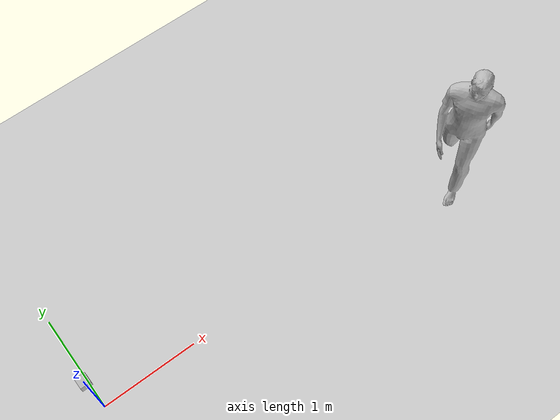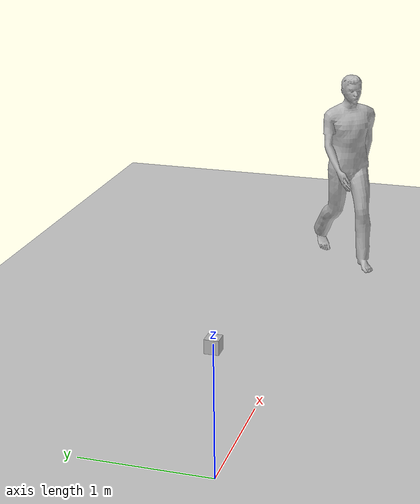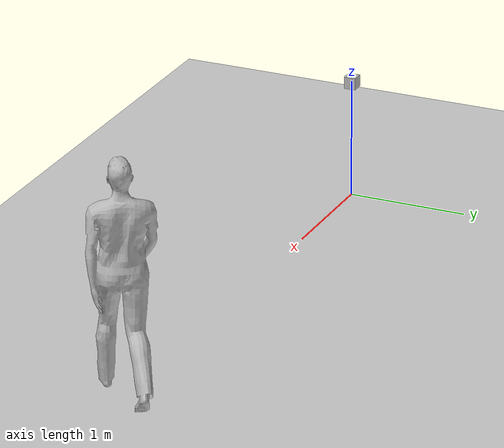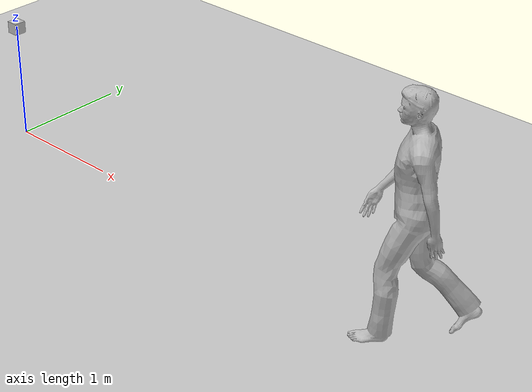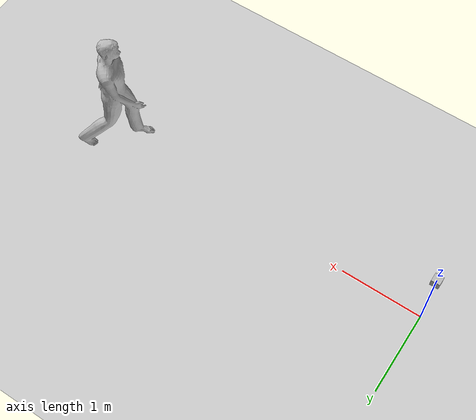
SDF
<sdf version="1.6">
 <world name="default">
  <light name="sun" type="directional">
   <pose>0 0 10 0 -0 0</pose>
   <diffuse>0.8 0.8 0.8 1</diffuse>
   <specular>0.2 0.2 0.2 1</specular>
   <attenuation>
    <range>1000</range>
    <constant>0.9</constant>
    <linear>0.01</linear>
    <quadratic>0.001</quadratic>
   </attenuation>
   <direction>-0.5 0.1 -0.9</direction>
  </light>
  <model name="ground_plane">
   <static>1</static>
   <link name="link">
    <collision name="collision">
     <geometry><plane><normal>0 0 1</normal><size>100 100</size></plane></geometry>
     <surface><friction><ode><mu>100</mu><mu2>50</mu2></ode></friction></surface>
    </collision>
    <visual name="visual">
     <cast_shadows>0</cast_shadows>
     <geometry><plane><normal>0 0 1</normal><size>100 100</size></plane></geometry>
     <material>
      <script><uri>file://media/materials/scripts/gazebo.material</uri><name>Gazebo/Grey</name></script>
     </material>
    </visual>
   </link>
  </model>
  <model name="camera">
   <pose>0 0 1 0 0 0</pose>
   <link name="link">
    <inertial>
     <mass>0.1</mass>
     <inertia>
      <ixx>0.000166667</ixx>
      <iyy>0.000166667</iyy>
      <izz>0.000166667</izz>
      <ixy>0</ixy>
      <ixz>0</ixz>
      <iyz>0</iyz>
     </inertia>
    </inertial>
    <collision name="collision"><geometry><box><size>0.1 0.1 0.1</size></box></geometry></collision>
    <visual name="visual"><geometry><box><size>0.1 0.1 0.1</size></box></geometry></visual>
    <sensor name="camera" type="camera">
     <camera name="__default__">
      <horizontal_fov>1.047</horizontal_fov>
      <image><width>512</width><height>512</height></image>
      <clip><near>0.1</near><far>100</far></clip>
     </camera>
     <plugin name="CameraBboxPlugin" filename="libCameraBboxPlugin.so">
      <always_on>true</always_on>
      <update_rate>30.0</update_rate>
      <cameraName>camera/rgb</cameraName>
      <imageTopicName>image_raw</imageTopicName>
      <cameraInfoTopicname>camera_info</cameraInfoTopicname>
      <frameName>camera_link</frameName>
      <hackBaseLine>0.07</hackBaseLine>
      <distortionK1>0.0</distortionK1>
      <distortionK2>0.0</distortionK2>
      <distortionK3>0.0</distortionK3>
      <distortionT1>0.0</distortionT1>
      <distortionT2>0.0</distortionT2>
     </plugin>
     <visualize>1</visualize>
    </sensor>
   </link>
   <static>1</static>
  </model>
  <gravity>0 0 -9.8</gravity>
  <magnetic_field>6e-06 2.3e-05 -4.2e-05</magnetic_field>
  <atmosphere type="adiabatic"/>
  <physics name="default_physics" default="0" type="ode">
   <max_step_size>0.001</max_step_size>
   <real_time_factor>1</real_time_factor>
   <real_time_update_rate>1000</real_time_update_rate>
  </physics>
  <scene><ambient>0.4 0.4 0.4 1</ambient><background>0.7 0.7 0.7 1</background><shadows>1</shadows></scene>
  <spherical_coordinates>
   <surface_model>EARTH_WGS84</surface_model>
   <latitude_deg>0</latitude_deg>
   <longitude_deg>0</longitude_deg>
   <elevation>0</elevation>
   <heading_deg>0</heading_deg>
  </spherical_coordinates>
  <model name="person_walking">
   <link name="link">
    <inertial>
     <pose>0 0 0.95 0 -0 0</pose>
     <mass>80</mass>
     <inertia><ixx>27.82</ixx><ixy>0</ixy><ixz>0</ixz><iyy>24.88</iyy><iyz>0</iyz><izz>4.57</izz></inertia>
    </inertial>
    <collision name="bottom">
     <pose>0 0 0.01 0 -0 0</pose>
     <geometry><box><size>0.35 0.75 0.02</size></box></geometry>
    </collision>
    <collision name="person">
     <pose>0 0 -0.02 0 -0 0</pose>
     <geometry><mesh><uri>model://person_walking/meshes/walking.dae</uri><scale>1 1 1</scale></mesh></geometry>
    </collision>
    <visual name="visual">
     <pose>0 0 -0.02 0 -0 0</pose>
     <geometry><mesh><uri>model://person_walking/meshes/walking.dae</uri><scale>1 1 1</scale></mesh></geometry>
     <plugin name="VisualBboxPlugin" filename="libVisualBboxPlugin.so"/>
    </visual>
   </link>
   <pose>4.133 -0.04 0 0 0 -1</pose>
   <static>1</static>
   <plugin name="SetPosePlugin" filename="libSetPosePlugin.so"/>
   <plugin name="GetPosePlugin" filename="libGetPosePlugin.so"/>
  </model>
 </world>
</sdf>
